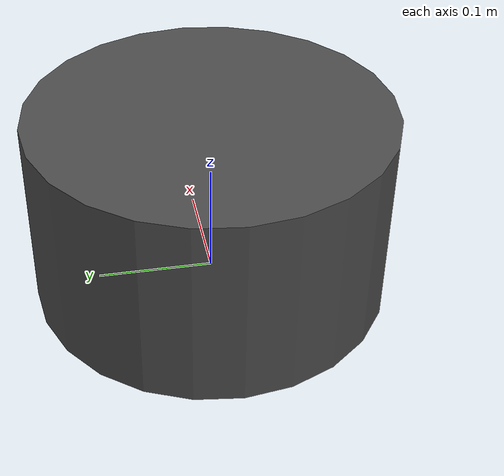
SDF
<?xml version="1.0"?>
<sdf version="1.6">
  <model name="research_circular_robot">

    <!-- ═══════════════════════════════════════════════════════════
         BASE CHASSIS
    ═══════════════════════════════════════════════════════════ -->
    <link name="base_link">
      <pose>0 0 0.074 0 0 0</pose>

      <inertial>
        <mass>1.600</mass>
        <inertia>
          <ixx>0.010649</ixx>  <!-- (1/12)*m*(3r²+h²) approx -->
          <ixy>0</ixy>
          <ixz>0</ixz>
          <iyy>0.010649</iyy>
          <iyz>0</iyz>
          <izz>0.019469</izz>  <!-- (1/2)*m*r² -->
        </inertia>
      </inertial>

      <collision name="chassis_collision">
        <geometry>
          <cylinder>
            <radius>0.156</radius>
            <length>0.170</length>
          </cylinder>
        </geometry>
        <surface>
          <friction>
            <ode>
              <mu>0.6</mu>
              <mu2>0.6</mu2>
            </ode>
          </friction>
        </surface>
      </collision>

      <visual name="chassis_visual">
        <geometry>
          <cylinder>
            <radius>0.156</radius>
            <length>0.170</length>
          </cylinder>
        </geometry>
        <material>
          <ambient>0.3 0.3 0.3 1</ambient>
          <diffuse>0.3 0.3 0.3 1</diffuse>
          <specular>0.1 0.1 0.1 1</specular>
        </material>
      </visual>

      <!-- Ball caster (rear) -->
      <collision name="caster_collision">
        <pose>0 -0.130 -0.052 0 0 0</pose>
        <geometry>
          <sphere><radius>0.012</radius></sphere>
        </geometry>
        <surface>
          <friction>
            <ode><mu>0</mu><mu2>0</mu2></ode>
          </friction>
        </surface>
      </collision>
      <visual name="caster_visual">
        <pose>0 -0.130 -0.052 0 0 0</pose>
        <geometry>
          <sphere><radius>0.012</radius></sphere>
        </geometry>
        <material>
          <ambient>0.15 0.15 0.15 1</ambient>
          <diffuse>0.15 0.15 0.15 1</diffuse>
        </material>
      </visual>

      <sensor name="ps0" type="ray">
        <pose>-0.156 0 0.050 0 0 3.14159</pose>
        <ray>
          <scan><horizontal><samples>1</samples><min_angle>0</min_angle><max_angle>0</max_angle></horizontal></scan>
          <range><min>0.02</min><max>6.0</max><resolution>0.01</resolution></range>
        </ray>
        <always_on>1</always_on>
        <update_rate>10</update_rate>
        <visualize>false</visualize>
      </sensor>

      <sensor name="ps1" type="ray">
        <pose>-0.110 -0.110 0.050 0 0 2.35619</pose>
        <ray>
          <scan><horizontal><samples>1</samples><min_angle>0</min_angle><max_angle>0</max_angle></horizontal></scan>
          <range><min>0.02</min><max>6.0</max><resolution>0.01</resolution></range>
        </ray>
        <always_on>1</always_on>
        <update_rate>10</update_rate>
        <visualize>false</visualize>
      </sensor>

      <sensor name="ps2" type="ray">
        <pose>0 -0.156 0.050 0 0 1.5708</pose>
        <ray>
          <scan><horizontal><samples>1</samples><min_angle>0</min_angle><max_angle>0</max_angle></horizontal></scan>
          <range><min>0.02</min><max>6.0</max><resolution>0.01</resolution></range>
        </ray>
        <always_on>1</always_on>
        <update_rate>10</update_rate>
        <visualize>false</visualize>
      </sensor>

      <sensor name="ps3" type="ray">
        <pose>0.110 -0.110 0.050 0 0 0.78540</pose>
        <ray>
          <scan><horizontal><samples>1</samples><min_angle>0</min_angle><max_angle>0</max_angle></horizontal></scan>
          <range><min>0.02</min><max>6.0</max><resolution>0.01</resolution></range>
        </ray>
        <always_on>1</always_on>
        <update_rate>10</update_rate>
        <visualize>false</visualize>
      </sensor>

      <sensor name="ps4" type="ray">
        <pose>0.156 0 0.050 0 0 0</pose>
        <ray>
          <scan><horizontal><samples>1</samples><min_angle>0</min_angle><max_angle>0</max_angle></horizontal></scan>
          <range><min>0.02</min><max>6.0</max><resolution>0.01</resolution></range>
        </ray>
        <always_on>1</always_on>
        <update_rate>10</update_rate>
        <visualize>false</visualize>
      </sensor>

      <sensor name="ps5" type="ray">
        <pose>0.110 0.110 0.050 0 0 -0.78540</pose>
        <ray>
          <scan><horizontal><samples>1</samples><min_angle>0</min_angle><max_angle>0</max_angle></horizontal></scan>
          <range><min>0.02</min><max>6.0</max><resolution>0.01</resolution></range>
        </ray>
        <always_on>1</always_on>
        <update_rate>10</update_rate>
        <visualize>false</visualize>
      </sensor>

      <sensor name="ps6" type="ray">
        <pose>0 0.156 0.050 0 0 -1.5708</pose>
        <ray>
          <scan><horizontal><samples>1</samples><min_angle>0</min_angle><max_angle>0</max_angle></horizontal></scan>
          <range><min>0.02</min><max>6.0</max><resolution>0.01</resolution></range>
        </ray>
        <always_on>1</always_on>
        <update_rate>10</update_rate>
        <visualize>false</visualize>
      </sensor>

      <sensor name="ps7" type="ray">
        <pose>-0.110 0.110 0.050 0 0 -2.35619</pose>
        <ray>
          <scan><horizontal><samples>1</samples><min_angle>0</min_angle><max_angle>0</max_angle></horizontal></scan>
          <range><min>0.02</min><max>6.0</max><resolution>0.01</resolution></range>
        </ray>
        <always_on>1</always_on>
        <update_rate>10</update_rate>
        <visualize>false</visualize>
      </sensor>

      <!-- IMU (accelerometer + gyro) -->
      <sensor name="imu" type="imu">
        <pose>0 0 0 0 0 0</pose>
        <always_on>1</always_on>
        <update_rate>100</update_rate>
        <imu>
          <angular_velocity>
            <x><noise type="gaussian"><mean>0</mean><stddev>2e-4</stddev></noise></x>
            <y><noise type="gaussian"><mean>0</mean><stddev>2e-4</stddev></noise></y>
            <z><noise type="gaussian"><mean>0</mean><stddev>2e-4</stddev></noise></z>
          </angular_velocity>
          <linear_acceleration>
            <x><noise type="gaussian"><mean>0</mean><stddev>1.7e-2</stddev></noise></x>
            <y><noise type="gaussian"><mean>0</mean><stddev>1.7e-2</stddev></noise></y>
            <z><noise type="gaussian"><mean>0</mean><stddev>1.7e-2</stddev></noise></z>
          </linear_acceleration>
        </imu>
      </sensor>
    </link>

    <!-- ═══════════════════════════════════════════════════════════
         LEFT WHEEL  (y = +0.120 m)
    ═══════════════════════════════════════════════════════════ -->
    <link name="left_wheel">
      <pose>0 0.120 0.052 0 1.5708 1.5708</pose>
      <inertial>
        <mass>0.080</mass>
        <inertia>
          <ixx>0.000054</ixx>
          <ixy>0</ixy>
          <ixz>0</ixz>
          <iyy>0.000054</iyy>
          <iyz>0</iyz>
          <izz>0.000108</izz>
        </inertia>
      </inertial>
      <collision name="collision">
        <geometry>
          <cylinder><radius>0.052</radius><length>0.020</length></cylinder>
        </geometry>
        <surface>
          <friction>
            <ode><mu>10</mu><mu2>10</mu2><fdir1>0 0 0</fdir1></ode>
          </friction>
        </surface>
      </collision>
      <visual name="visual">
        <geometry>
          <cylinder><radius>0.052</radius><length>0.020</length></cylinder>
        </geometry>
        <material>
          <ambient>0.1 0.1 0.1 1</ambient>
          <diffuse>0.1 0.1 0.1 1</diffuse>
        </material>
      </visual>
    </link>

    <!-- ═══════════════════════════════════════════════════════════
         RIGHT WHEEL  (y = -0.120 m)
    ═══════════════════════════════════════════════════════════ -->
    <link name="right_wheel">
      <pose>0 -0.120 0.052 0 1.5708 1.5708</pose>
      <inertial>
        <mass>0.080</mass>
        <inertia>
          <ixx>0.000054</ixx>
          <ixy>0</ixy>
          <ixz>0</ixz>
          <iyy>0.000054</iyy>
          <iyz>0</iyz>
          <izz>0.000108</izz>
        </inertia>
      </inertial>
      <collision name="collision">
        <geometry>
          <cylinder><radius>0.052</radius><length>0.020</length></cylinder>
        </geometry>
        <surface>
          <friction>
            <ode><mu>10</mu><mu2>10</mu2><fdir1>0 0 0</fdir1></ode>
          </friction>
        </surface>
      </collision>
      <visual name="visual">
        <geometry>
          <cylinder><radius>0.052</radius><length>0.020</length></cylinder>
        </geometry>
        <material>
          <ambient>0.1 0.1 0.1 1</ambient>
          <diffuse>0.1 0.1 0.1 1</diffuse>
        </material>
      </visual>
    </link>

    <!-- ═══════════════════════════════════════════════════════════
         JOINTS
    ═══════════════════════════════════════════════════════════ -->
    <joint name="left_wheel_joint" type="revolute">
      <parent>base_link</parent>
      <child>left_wheel</child>
      <axis>
        <xyz>0 0 1</xyz>
        <limit><lower>-1e+16</lower><upper>1e+16</upper></limit>
        <dynamics><friction>0.1</friction><damping>0.1</damping></dynamics>
      </axis>
    </joint>

    <joint name="right_wheel_joint" type="revolute">
      <parent>base_link</parent>
      <child>right_wheel</child>
      <axis>
        <xyz>0 0 1</xyz>
        <limit><lower>-1e+16</lower><upper>1e+16</upper></limit>
        <dynamics><friction>0.1</friction><damping>0.1</damping></dynamics>
      </axis>
    </joint>

    <!-- ═══════════════════════════════════════════════════════════
         GAZEBO PLUGINS
    ═══════════════════════════════════════════════════════════ -->
    <plugin name="diff_drive" filename="libgazebo_ros_diff_drive.so">
      <ros>
        <namespace>/research_circular_robot</namespace>
        <remapping>cmd_vel:=cmd_vel</remapping>
        <remapping>odom:=odom</remapping>
      </ros>
      <left_joint>left_wheel_joint</left_joint>
      <right_joint>right_wheel_joint</right_joint>
      <wheel_separation>0.240</wheel_separation>
      <wheel_diameter>0.104</wheel_diameter>
      <max_wheel_torque>2.0</max_wheel_torque>
      <max_wheel_acceleration>1.0</max_wheel_acceleration>
      <publish_odom>true</publish_odom>
      <publish_odom_tf>true</publish_odom_tf>
      <publish_wheel_tf>false</publish_wheel_tf>
      <odometry_frame>odom</odometry_frame>
      <robot_base_frame>base_link</robot_base_frame>
    </plugin>

    <plugin name="joint_state_publisher" filename="libgazebo_ros_joint_state_publisher.so">
      <ros>
        <namespace>/research_circular_robot</namespace>
        <remapping>~/out:=joint_states</remapping>
      </ros>
      <update_rate>30</update_rate>
      <joint_name>left_wheel_joint</joint_name>
      <joint_name>right_wheel_joint</joint_name>
    </plugin>

    <plugin name="imu_plugin" filename="libgazebo_ros_imu_sensor.so">
      <ros>
        <namespace>/research_circular_robot</namespace>
        <remapping>~/out:=imu/data</remapping>
      </ros>
      <sensor_name>imu</sensor_name>
      <frame_name>base_link</frame_name>
    </plugin>

  </model>
</sdf>
